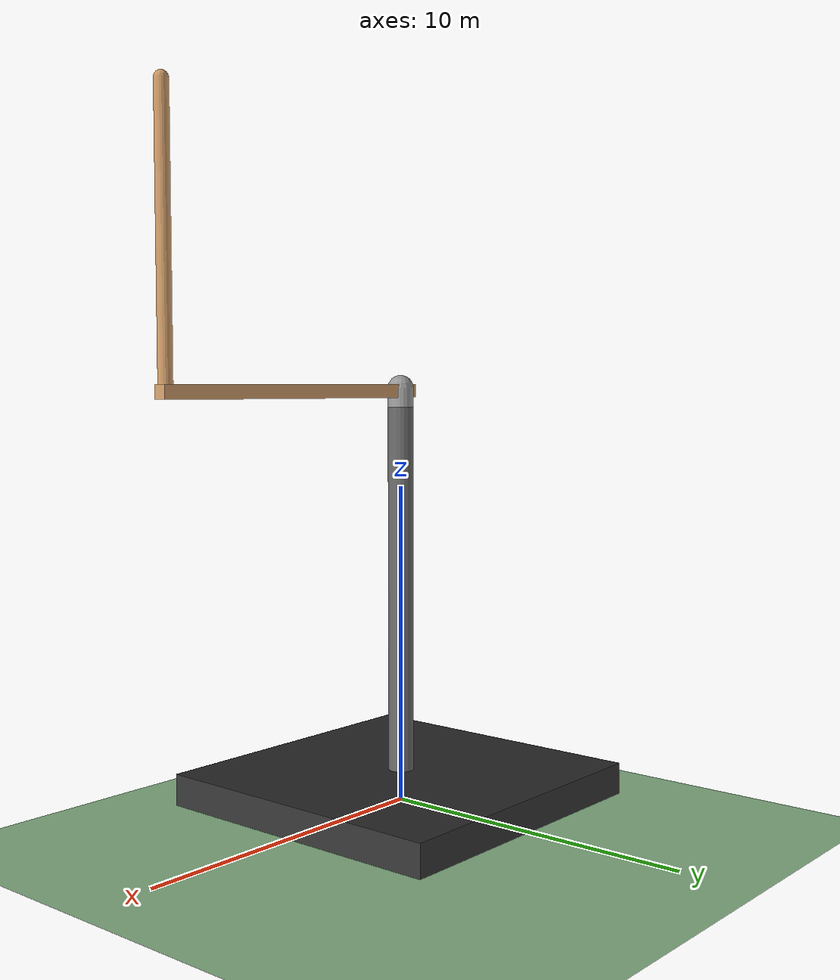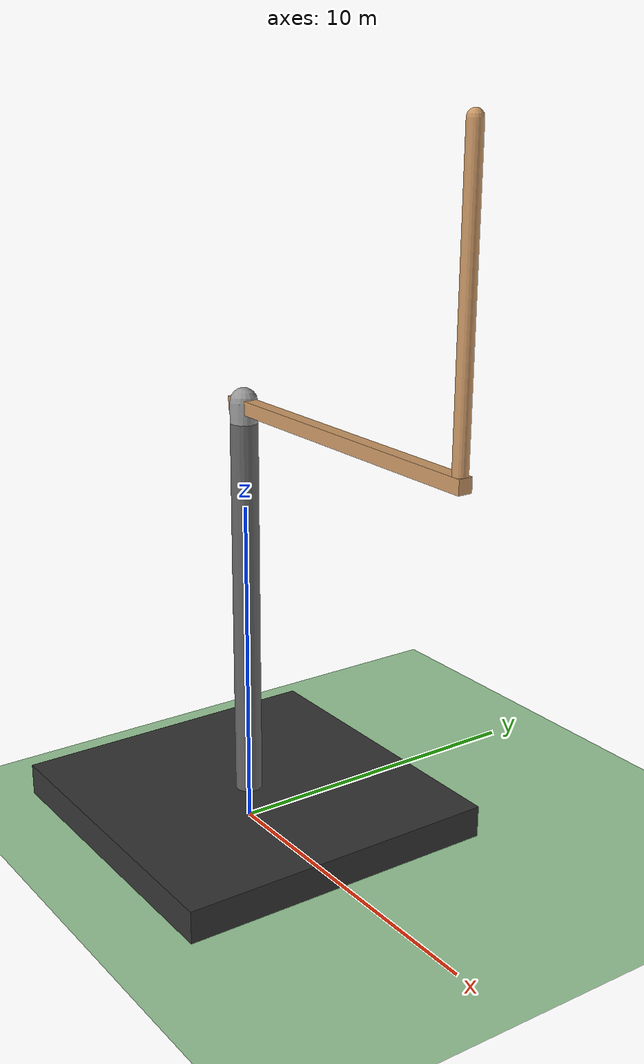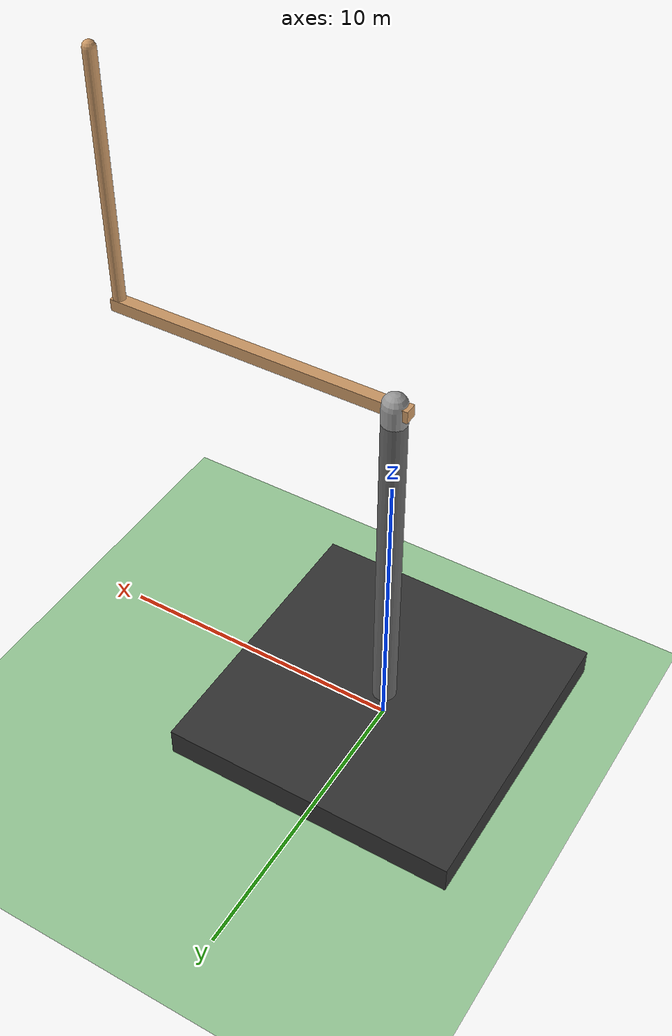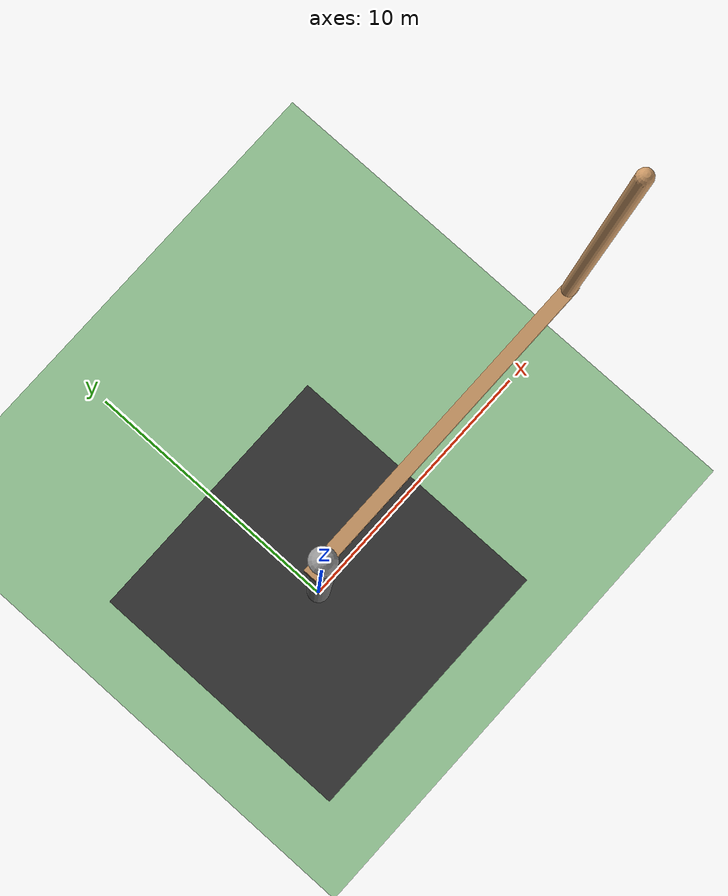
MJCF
<mujoco model="inverted_pendulum">
  <compiler angle="radian" coordinate="local" inertiafromgeom="true"/>

  <default>
    <joint armature=".1" damping=".01" limited="true" solimplimit="0 .8 .03" solreflimit=".02 1" />
    <geom conaffinity="0" condim="3" contype="1" friction=".4 .1 .1" rgba="0.8 0.6 .4 1" solimp="0.0 0.8 0.01" solref="0.02 1"/>
    <motor ctrllimited="true" ctrlrange="-4.2 4.2"/>
  </default>

  <size nstack="300000" nuser_geom="1"/>
  <option gravity="0 0 -9.81" timestep="0.01" />

  <asset>
    <texture builtin="gradient" height="100" rgb1="1 1 1" rgb2="0 0 0" type="skybox" width="100"/>
    <texture builtin="flat" height="1278" mark="cross" markrgb="1 1 1" name="texgeom" random="0.01" rgb1="0.8 0.6 0.4" rgb2="0.8 0.6 0.4" type="cube" width="127"/>
    <texture builtin="checker" height="100" name="texplane" rgb1="0 0 0" rgb2="0.8 0.8 0.8" type="2d" width="100"/>
    <material name="MatPlane" reflectance="0." shininess="0" specular="0" texrepeat="60 60" texture="texplane"/>
      <material name="metal" reflectance="0.5" shininess="0.5" specular="0.5" />

    <material name="geom" texture="texgeom" texuniform="true"/>
  </asset>

  <worldbody>
    <light cutoff="100" diffuse="1 1 1" dir="-0 0 -1.3" directional="true" exponent="1" pos="0 0 1.3" specular=".1 .1 .1"/>
    <geom conaffinity="1" condim="3" material="MatPlane" name="floor" pos="0 0 0" rgba="0.6 0.8 0.6 1" size="40 40 40" type="plane"/>

    <!-- ------Inverted Pendulem------>  <!--body express -->
    <body name="base" pos="0 0 0.5" mocap="true">
      <camera name="track" mode="trackcom" pos="0 -3 0.3" xyaxes="1 0 0 0 0 1"/>
      <geom type="box" pos="0 0 0" size="5 5 0.5" name="base" mass="5" rgba="0.2 0.2 0.2 1"  material="metal"/>
        <body name="support" pos="0 0 6">
            <geom axisangle="0 0 1 -.27" name="support" pos="0 0 0" rgba="0.4 0.4 0.4 1" size=".4 6" type="capsule" mass="5" material="metal"/>
            <body name="motor" pos="0 0 6.3">
                <joint axis="0 0 1"  name="motor" pos="0 0 0" range="-3.14159265359 3.14159265359" type="hinge" limited="false"/>
                <geom axisangle="0 0 1 0" name="motor" pos="0 0 0" rgba="0.6 0.6 0.6 1" size=".4 0.3" type="capsule" mass="0.5" material="metal"/>
                <site name="motor" pos="0 0 0" size=".003 .003 .003" type="ellipsoid" rgba="0.3 0.2 0.1 0.3"/>
                <body name="arm" pos="4.5 0 0.2">
                    <geom type="box" pos="0 0 0" size="5 0.2 0.2" name="arm" mass="0.1" material="metal"/>
                    <body name="pole" pos="4.8 0 0">
                     <joint axis="1 0 0" damping="0.01" name="pole" pos="0 0 0" range="-6.28318530718 6.28318530718" type="hinge" frictionloss='0.' limited="false"/>
                        <site name="pole" pos="0 0 0" size=".003 .003 .003" type="ellipsoid" rgba="0.3 0.2 0.1 0.3"/>
                     <geom axisangle="1 0 0 0" name="pole" pos="0 0 4" size=".2 4" type="capsule" mass="0.05" />-->
                    </body>
                </body>
            </body>
        </body>
    </body>
  </worldbody>
  <actuator>
    <motor gear="4.2" joint="motor" name="motor" ctrllimited="true" ctrlrange="-1.0 1.0" />　-->
  </actuator>
  <sensor>
   <torque site="motor" name="torque_sensor"/>-->
      <torque site="pole" name="torque_sensor1"/>-->
  </sensor>
</mujoco>
